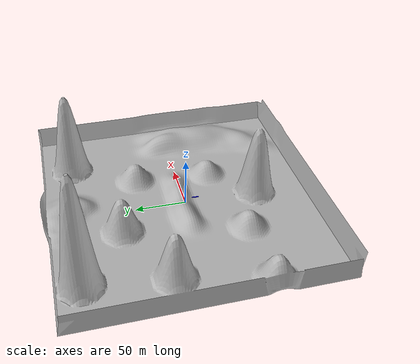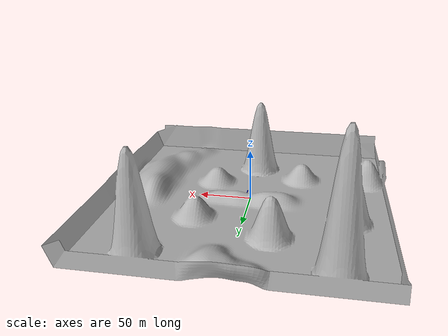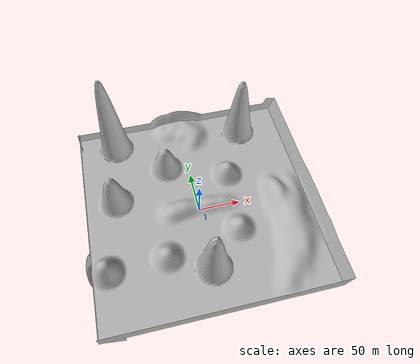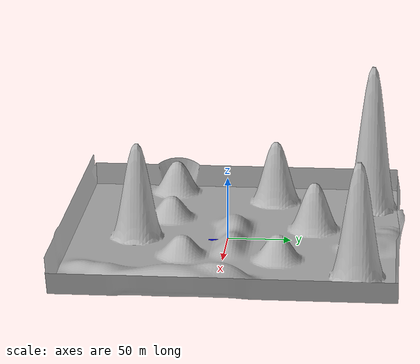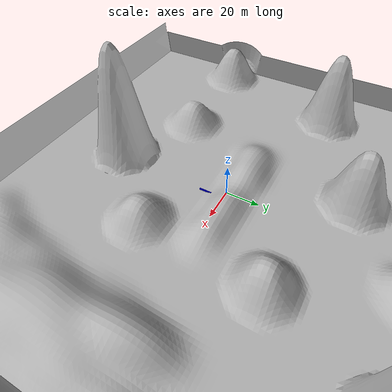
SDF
<sdf version='1.10'>
  <world name='empty'>
    <physics name='1ms' type='ignored'>
      <max_step_size>0.001</max_step_size>
      <real_time_factor>1</real_time_factor>
      <real_time_update_rate>1000</real_time_update_rate>
    </physics>
    <plugin name='gz::sim::systems::Physics' filename='gz-sim-physics-system'/>
    <plugin name='gz::sim::systems::UserCommands' filename='gz-sim-user-commands-system'/>
    <plugin name='gz::sim::systems::SceneBroadcaster' filename='gz-sim-scene-broadcaster-system'/>

   <plugin filename="gz-sim-contact-system" name="gz::sim::systems::Contact"/>

    <scene>
      <grid>false</grid>
      <ambient>0.400000006 0.400000006 0.400000006 1</ambient>
      <background>0.699999988 0.699999988 0.699999988 1</background>
      <shadows>true</shadows>
    </scene>
    <gravity>0 0 -9.8000000000000007</gravity>
    <magnetic_field>5.5644999999999998e-06 2.2875799999999999e-05 -4.2388400000000002e-05</magnetic_field>
    <atmosphere type='adiabatic'/>
    <model name='WorldEnvirement'>
      <static>true</static>
      <pose>0 0 0 0 0 0</pose>
      <link name='link'>
        <collision name='collision'>
          <geometry>
            <mesh>
              <scale>20 20 20</scale>
              <uri>wld.dae</uri>
            </mesh>
          </geometry>
        </collision>
        <visual name='visual'>
          <geometry>
            <mesh>
              <scale>20 20 20</scale>
              <uri>wld.dae</uri>
            </mesh>
          </geometry>
        </visual>
        <pose>0 0 0 0 0 0</pose>
        <inertial>
          <pose>0 0 0 0 0 0</pose>
          <mass>1</mass>
          <inertia>
            <ixx>1</ixx>
            <ixy>0</ixy>
            <ixz>0</ixz>
            <iyy>1</iyy>
            <iyz>0</iyz>
            <izz>1</izz>
          </inertia>
        </inertial>
        <enable_wind>false</enable_wind>
      </link>
      <self_collide>false</self_collide>
    </model>

    <model name='wall'>
    <static>true</static>
    <pose>5 -10 0 0 0 0</pose><!--pose relative to the world-->
    <link name='box'>
        <visual name='visual'>
            <geometry>
                <box>
                    <size>0.5 10.0 2.0</size>
                </box>
            </geometry>
            <!--let's add color to our link-->
            <material>
                <ambient>0.0 0.0 1.0 1</ambient>
                <diffuse>0.0 0.0 1.0 1</diffuse>
                <specular>0.0 0.0 1.0 1</specular>
            </material>
        </visual>
        <collision name="my_collision">
          <geometry>
            <box>
              <size>0.5 10.0 2.0</size>
            </box>
          </geometry>

        </collision>
        <sensor name="contact_sensor" type="contact">
            <contact>
                <collision>my_collision</collision>
            </contact>
        </sensor>

    </link>
      <plugin filename="gz-sim-touchplugin-system" name="gz::sim::systems::TouchPlugin">
            <target>base_link</target>
            <namespace>wall</namespace>
            <time>0.001</time>
            <enabled>true</enabled>
        </plugin>
    </model>

    <light name='sun' type='directional'>
      <pose>0 0 100 0 0 0</pose>
      <cast_shadows>true</cast_shadows>
      <intensity>1</intensity>
      <direction>0 1 1</direction>
      <diffuse>0.800000012 0.800000012 0.800000012 1</diffuse>
      <specular>0.100001 0.100001 0.100001 1</specular>
      <attenuation>
        <range>1000</range>
        <linear>1</linear>
        <constant>0.90000000000000002</constant>
        <quadratic>0.001</quadratic>
      </attenuation>
      <spot>
        <inner_angle>0</inner_angle>
        <outer_angle>0</outer_angle>
        <falloff>0</falloff>
      </spot>
    </light>
  </world>
</sdf>
